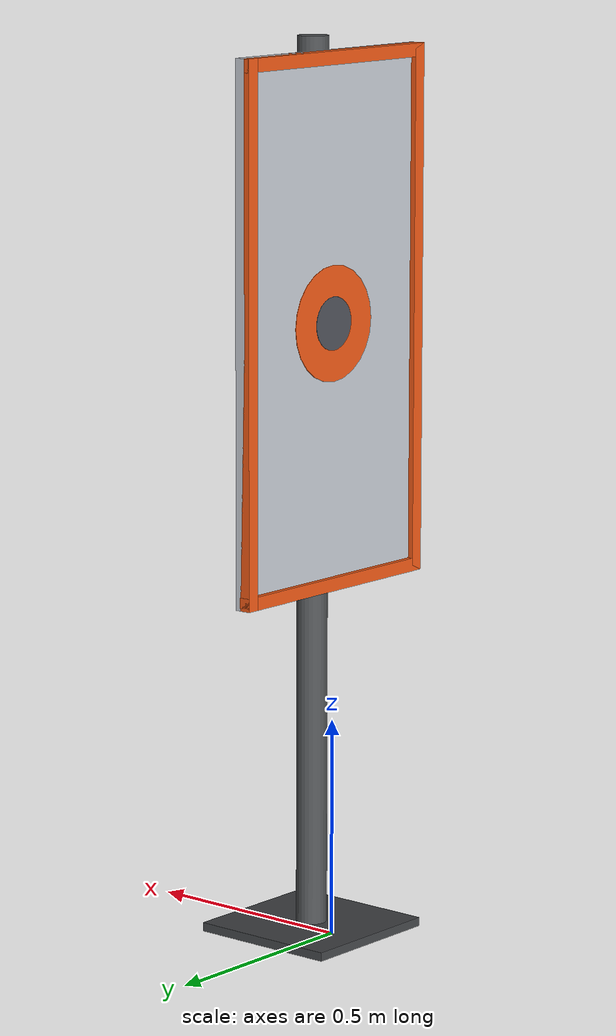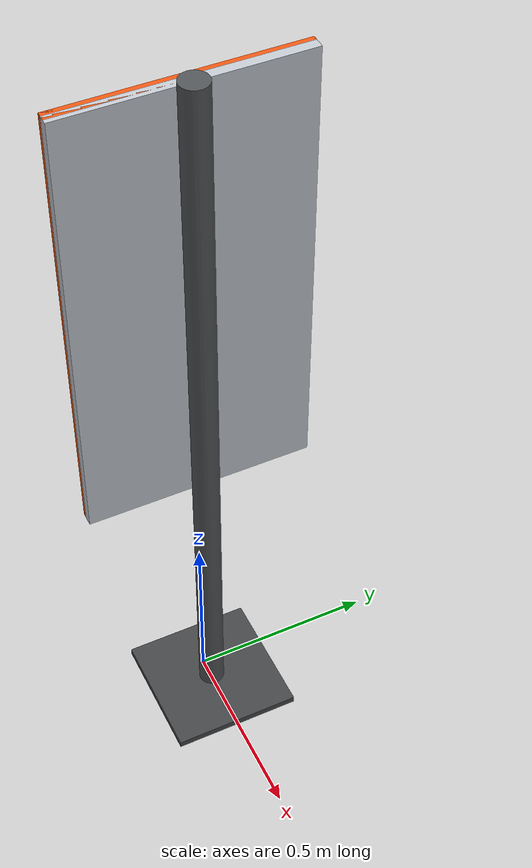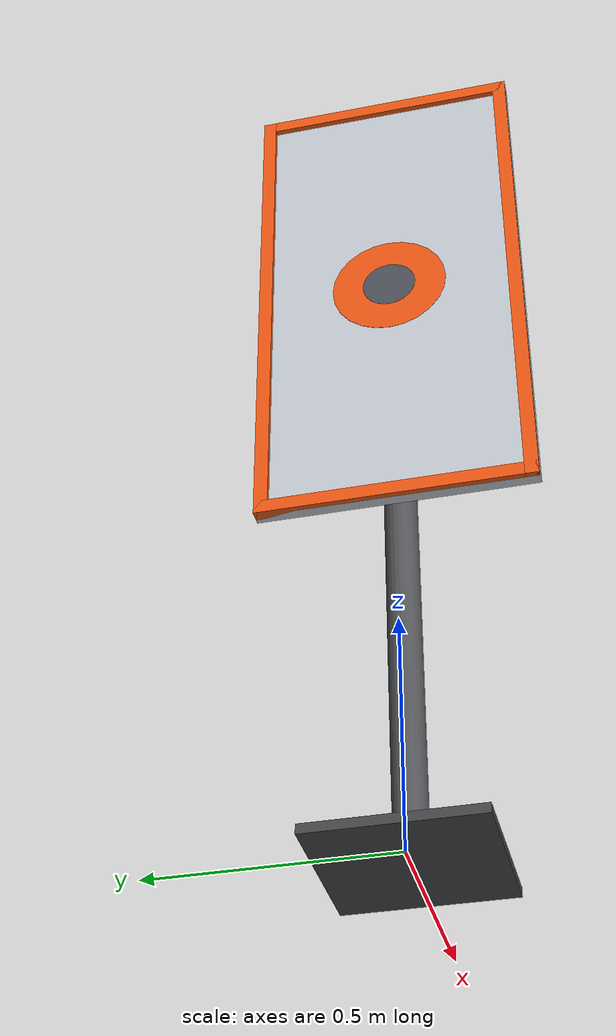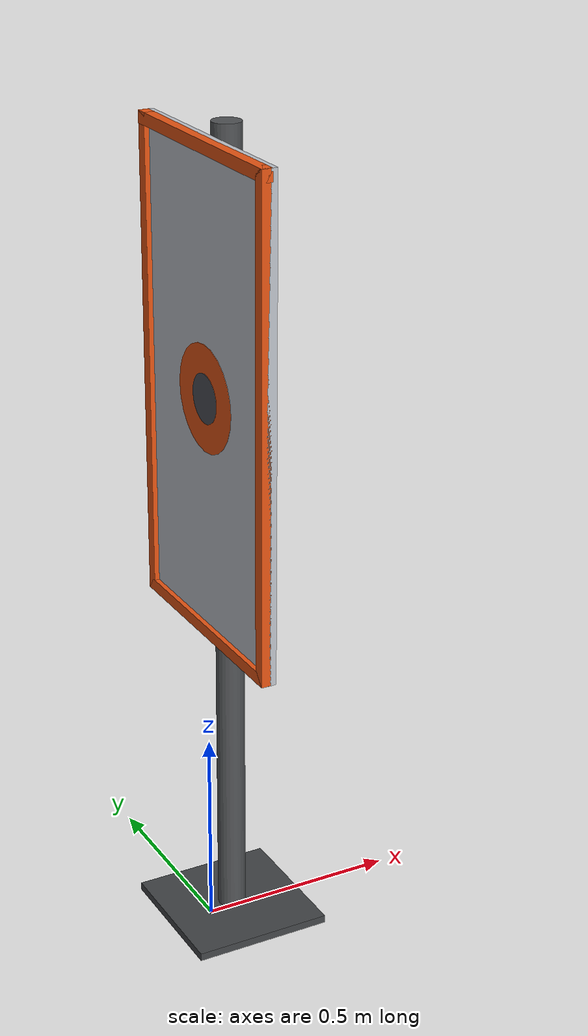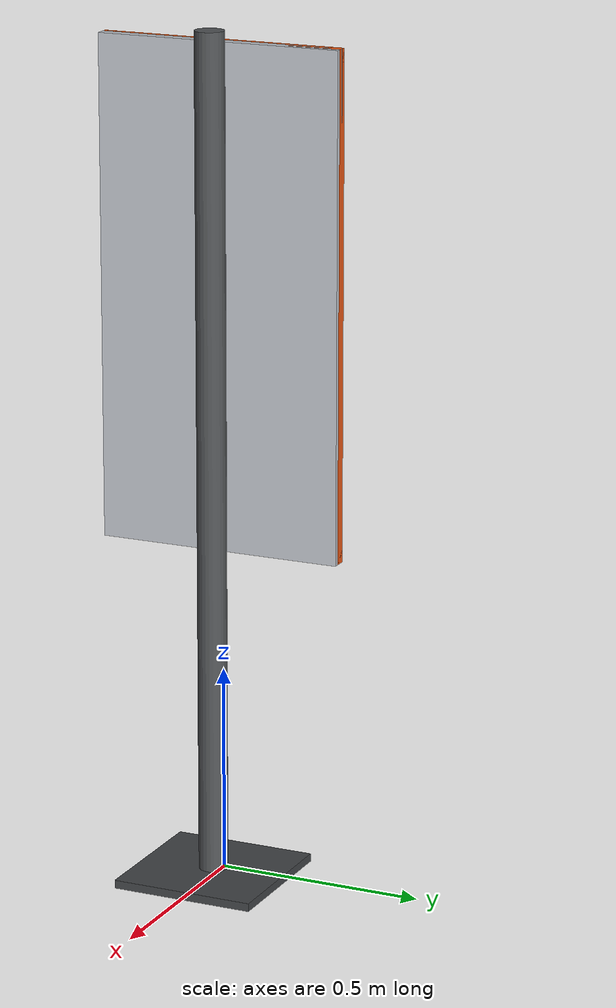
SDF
<?xml version="1.0" encoding="UTF-8"?>
<!-- Created: 27/09/2026 -->
<sdf version="1.9">
  <model name="interaction_pole">
    <static>false</static>

    <!-- Weld point. No geometry; it exists only to give the force sensor a
         parent link, since a joint parented to `world` cannot carry one. -->
    <link name="anchor">
      <inertial>
        <mass>0.001</mass>
        <inertia><ixx>1e-6</ixx><ixy>0</ixy><ixz>0</ixz><iyy>1e-6</iyy><iyz>0</iyz><izz>1e-6</izz></inertia>
      </inertial>
    </link>
    <joint name="anchor_to_world" type="fixed">
      <parent>world</parent>
      <child>anchor</child>
    </joint>

    <link name="pole">
      <inertial>
        <pose>0.045 0 1.05 0 0 0</pose>
        <mass>25.0</mass>
        <inertia><ixx>8.4</ixx><ixy>0</ixy><ixz>0</ixz><iyy>8.4</iyy><iyz>0</iyz><izz>0.9</izz></inertia>
      </inertial>

      <!-- Floor plate. -->
      <collision name="base_plate_collision">
        <pose>0.060 0 0.010 0 0 0</pose>
        <geometry><box><size>0.35 0.35 0.02</size></box></geometry>
      </collision>
      <visual name="base_plate_visual">
        <pose>0.060 0 0.010 0 0 0</pose>
        <geometry><box><size>0.35 0.35 0.02</size></box></geometry>
        <material><ambient>0.16 0.17 0.18 1</ambient><diffuse>0.26 0.27 0.28 1</diffuse><specular>0.30 0.30 0.30 1</specular></material>
      </visual>

      <!-- Mast, behind the panel so the panel face stays at local x = 0. -->
      <collision name="mast_collision">
        <pose>0.060 0 1.025 0 0 0</pose>
        <geometry><cylinder><radius>0.035</radius><length>2.01</length></cylinder></geometry>
      </collision>
      <visual name="mast_visual">
        <pose>0.060 0 1.025 0 0 0</pose>
        <geometry><cylinder><radius>0.035</radius><length>2.01</length></cylinder></geometry>
        <material><ambient>0.20 0.21 0.22 1</ambient><diffuse>0.32 0.33 0.34 1</diffuse><specular>0.28 0.28 0.28 1</specular></material>
      </visual>

      <!-- Push panel. Contact face at local x = 0, normal pointing -X. -->
      <collision name="push_surface_collision">
        <pose>0.0125 0 1.400 0 0 0</pose>
        <geometry><box><size>0.025 0.60 1.20</size></box></geometry>
        <surface>
          <friction><ode><mu>0.7</mu><mu2>0.7</mu2></ode></friction>
          <contact><ode><kp>1e6</kp><kd>60</kd></ode></contact>
        </surface>
      </collision>
      <visual name="push_surface_visual">
        <pose>0.0125 0 1.400 0 0 0</pose>
        <geometry><box><size>0.025 0.60 1.20</size></box></geometry>
        <material><ambient>0.58 0.60 0.63 1</ambient><diffuse>0.76 0.78 0.81 1</diffuse><specular>0.20 0.20 0.20 1</specular></material>
      </visual>

      <!-- Aiming target on the panel face, at the panel centre (z = 1.4 m). -->
      <visual name="target_ring">
        <pose>-0.0005 0 1.400 0 1.57079632679 0</pose>
        <geometry><cylinder><radius>0.13</radius><length>0.001</length></cylinder></geometry>
        <material><ambient>0.55 0.18 0.05 1</ambient><diffuse>0.92 0.34 0.08 1</diffuse></material>
      </visual>
      <visual name="target_centre">
        <pose>-0.0011 0 1.400 0 1.57079632679 0</pose>
        <geometry><cylinder><radius>0.06</radius><length>0.001</length></cylinder></geometry>
        <material><ambient>0.20 0.21 0.23 1</ambient><diffuse>0.30 0.31 0.34 1</diffuse></material>
      </visual>

      <!-- Panel edge banding, so the usable surface is visible from a distance. -->
      <visual name="panel_edge_positive_y"><pose>0.0005 0.285 1.400 0 0 0</pose><geometry><box><size>0.026 0.03 1.20</size></box></geometry><material><ambient>0.55 0.18 0.05 1</ambient><diffuse>0.92 0.34 0.08 1</diffuse></material></visual>
      <visual name="panel_edge_negative_y"><pose>0.0005 -0.285 1.400 0 0 0</pose><geometry><box><size>0.026 0.03 1.20</size></box></geometry><material><ambient>0.55 0.18 0.05 1</ambient><diffuse>0.92 0.34 0.08 1</diffuse></material></visual>
      <visual name="panel_edge_top"><pose>0.0005 0 1.985 0 0 0</pose><geometry><box><size>0.026 0.60 0.03</size></box></geometry><material><ambient>0.55 0.18 0.05 1</ambient><diffuse>0.92 0.34 0.08 1</diffuse></material></visual>
      <visual name="panel_edge_bottom"><pose>0.0005 0 0.815 0 0 0</pose><geometry><box><size>0.026 0.60 0.03</size></box></geometry><material><ambient>0.55 0.18 0.05 1</ambient><diffuse>0.92 0.34 0.08 1</diffuse></material></visual>

      <sensor name="push_surface_contact" type="contact">
        <always_on>1</always_on>
        <update_rate>100</update_rate>
        <contact><collision>push_surface_collision</collision></contact>
      </sensor>
    </link>

    <joint name="pole_base" type="prismatic">
      <parent>anchor</parent>
      <child>pole</child>
      <axis>
        <xyz>1 0 0</xyz>
        <limit><lower>-0.005</lower><upper>0.005</upper></limit>
        <dynamics>
          <spring_stiffness>1000000</spring_stiffness>
          <spring_reference>0</spring_reference>
          <damping>5000</damping>
        </dynamics>
      </axis>
      <sensor name="reaction_force" type="force_torque">
        <always_on>1</always_on>
        <update_rate>250</update_rate>
        <force_torque>
          <frame>child</frame>
          <measure_direction>child_to_parent</measure_direction>
        </force_torque>
      </sensor>
    </joint>
  </model>
</sdf>
